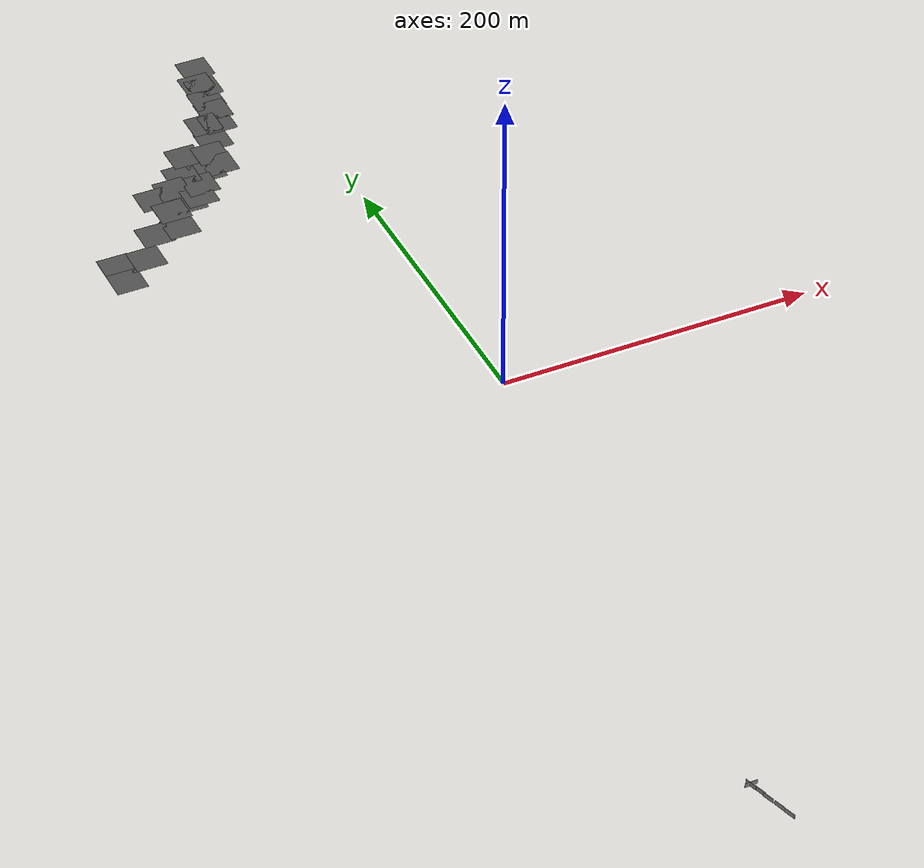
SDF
<sdf version="1.7">
 <world name="default">
  <spherical_coordinates>
   <surface_model>EARTH_WGS84</surface_model>
   <world_frame_orientation>NED</world_frame_orientation>
   <latitude_deg>39.8904</latitude_deg>
   <longitude_deg>32.7815</longitude_deg>
   <elevation>934</elevation>
   <heading_deg>0</heading_deg>
  </spherical_coordinates>
  <light name="sun" type="directional">
   <pose>0 0 10 0 -0 0</pose>
   <diffuse>0.8 0.8 0.8 1</diffuse>
   <specular>0.2 0.2 0.2 1</specular>
   <attenuation>
    <range>1000</range>
    <constant>0.9</constant>
    <linear>0.01</linear>
    <quadratic>0.001</quadratic>
   </attenuation>
   <direction>-0.5 0.1 -0.9</direction>
   <spot><inner_angle>0</inner_angle><outer_angle>0</outer_angle><falloff>0</falloff></spot>
  </light>
  <magnetic_field>6e-06 2.3e-05 -4.2e-05</magnetic_field>
  <atmosphere type="adiabatic"/>
  <physics name="default_physics" default="0" type="ode">
   <max_step_size>0.001</max_step_size>
   <real_time_factor>1</real_time_factor>
   <real_time_update_rate>1000</real_time_update_rate>
  </physics>
  <scene><ambient>0.4 0.4 0.4 1</ambient><background>0.7 0.7 0.7 1</background><shadows>1</shadows></scene>
  <audio><device>default</device></audio>
  <model name="grey_wall">
   <static>1</static>
   <link name="link">
    <pose>0 0 1.4 0 -0 0</pose>
    <collision name="collision"><geometry><box><size>7.5 0.2 2.8</size></box></geometry></collision>
    <visual name="visual">
     <cast_shadows>0</cast_shadows>
     <geometry><box><size>7.5 0.2 2.8</size></box></geometry>
     <material>
      <script>
       <uri>model://grey_wall/materials/scripts</uri>
       <uri>model://grey_wall/materials/textures</uri>
       <name>vrc/grey_wall</name>
      </script>
     </material>
    </visual>
   </link>
   <pose>-26.7501 -356.978 0 0 -0 0</pose>
  </model>
  <model name="grey_wall_clone">
   <static>1</static>
   <link name="link">
    <pose>0 0 1.4 0 -0 0</pose>
    <collision name="collision"><geometry><box><size>7.5 0.2 2.8</size></box></geometry></collision>
    <visual name="visual">
     <cast_shadows>0</cast_shadows>
     <geometry><box><size>7.5 0.2 2.8</size></box></geometry>
     <material>
      <script>
       <uri>model://grey_wall/materials/scripts</uri>
       <uri>model://grey_wall/materials/textures</uri>
       <name>vrc/grey_wall</name>
      </script>
     </material>
    </visual>
   </link>
   <pose>-27.2286 -357.564 0 0 -0 1.87601</pose>
  </model>
  <model name="grey_wall_clone_0">
   <static>1</static>
   <link name="link">
    <pose>0 0 1.4 0 -0 0</pose>
    <collision name="collision"><geometry><box><size>7.5 0.2 2.8</size></box></geometry></collision>
    <visual name="visual">
     <cast_shadows>0</cast_shadows>
     <geometry><box><size>7.5 0.2 2.8</size></box></geometry>
     <material>
      <script>
       <uri>model://grey_wall/materials/scripts</uri>
       <uri>model://grey_wall/materials/textures</uri>
       <name>vrc/grey_wall</name>
      </script>
     </material>
    </visual>
   </link>
   <pose>-25 -364 0 0 -0 1.87601</pose>
  </model>
  <model name="grey_wall_clone_0_clone">
   <static>1</static>
   <link name="link">
    <pose>0 0 1.4 0 -0 0</pose>
    <collision name="collision"><geometry><box><size>7.5 0.2 2.8</size></box></geometry></collision>
    <visual name="visual">
     <cast_shadows>0</cast_shadows>
     <geometry><box><size>7.5 0.2 2.8</size></box></geometry>
     <material>
      <script>
       <uri>model://grey_wall/materials/scripts</uri>
       <uri>model://grey_wall/materials/textures</uri>
       <name>vrc/grey_wall</name>
      </script>
     </material>
    </visual>
   </link>
   <pose>-23.5425 -370 0 0 -0 1.87601</pose>
  </model>
  <model name="grey_wall_clone_0_clone_clone">
   <static>1</static>
   <link name="link">
    <pose>0 0 1.4 0 -0 0</pose>
    <collision name="collision"><geometry><box><size>7.5 0.2 2.8</size></box></geometry></collision>
    <visual name="visual">
     <cast_shadows>0</cast_shadows>
     <geometry><box><size>7.5 0.2 2.8</size></box></geometry>
     <material>
      <script>
       <uri>model://grey_wall/materials/scripts</uri>
       <uri>model://grey_wall/materials/textures</uri>
       <name>vrc/grey_wall</name>
      </script>
     </material>
    </visual>
   </link>
   <pose>-21 -378 0 0 -0 1.87601</pose>
  </model>
  <model name="grey_wall_clone_0_clone_clone_clone">
   <static>1</static>
   <link name="link">
    <pose>0 0 1.4 0 -0 0</pose>
    <collision name="collision"><geometry><box><size>7.5 0.2 2.8</size></box></geometry></collision>
    <visual name="visual">
     <cast_shadows>0</cast_shadows>
     <geometry><box><size>7.5 0.2 2.8</size></box></geometry>
     <material>
      <script>
       <uri>model://grey_wall/materials/scripts</uri>
       <uri>model://grey_wall/materials/textures</uri>
       <name>vrc/grey_wall</name>
      </script>
     </material>
    </visual>
   </link>
   <pose>-19 -385 0 0 -0 1.87601</pose>
  </model>
  <gravity>0 0 -9.8</gravity>
  <model name="asphalt_plane">
   <static>1</static>
   <link name="link">
    <collision name="collision"><geometry><box><size>20 20 0.1</size></box></geometry></collision>
    <visual name="visual">
     <cast_shadows>0</cast_shadows>
     <geometry><box><size>20 20 0.1</size></box></geometry>
     <material>
      <script>
       <uri>model://asphalt_plane/materials/scripts</uri>
       <uri>model://asphalt_plane/materials/textures</uri>
       <name>vrc/asphalt</name>
      </script>
     </material>
    </visual>
   </link>
   <pose>-163.314 200.51 0 0 -0 0</pose>
  </model>
  <model name="asphalt_plane_clone">
   <static>1</static>
   <link name="link">
    <collision name="collision"><geometry><box><size>20 20 0.1</size></box></geometry></collision>
    <visual name="visual">
     <cast_shadows>0</cast_shadows>
     <geometry><box><size>20 20 0.1</size></box></geometry>
     <material>
      <script>
       <uri>model://asphalt_plane/materials/scripts</uri>
       <uri>model://asphalt_plane/materials/textures</uri>
       <name>vrc/asphalt</name>
      </script>
     </material>
    </visual>
   </link>
   <pose>-144.347 200.152 0 0 -0 0</pose>
  </model>
  <model name="asphalt_plane_clone_0">
   <static>1</static>
   <link name="link">
    <collision name="collision"><geometry><box><size>20 20 0.1</size></box></geometry></collision>
    <visual name="visual">
     <cast_shadows>0</cast_shadows>
     <geometry><box><size>20 20 0.1</size></box></geometry>
     <material>
      <script>
       <uri>model://asphalt_plane/materials/scripts</uri>
       <uri>model://asphalt_plane/materials/textures</uri>
       <name>vrc/asphalt</name>
      </script>
     </material>
    </visual>
   </link>
   <pose>-163.322 184.345 0 0 -0 0</pose>
  </model>
  <model name="asphalt_plane_clone_1">
   <static>1</static>
   <link name="link">
    <collision name="collision"><geometry><box><size>20 20 0.1</size></box></geometry></collision>
    <visual name="visual">
     <cast_shadows>0</cast_shadows>
     <geometry><box><size>20 20 0.1</size></box></geometry>
     <material>
      <script>
       <uri>model://asphalt_plane/materials/scripts</uri>
       <uri>model://asphalt_plane/materials/textures</uri>
       <name>vrc/asphalt</name>
      </script>
     </material>
    </visual>
   </link>
   <pose>-130.973 219.846 0 0 -0 0</pose>
  </model>
  <model name="asphalt_plane_clone_2">
   <static>1</static>
   <link name="link">
    <collision name="collision"><geometry><box><size>20 20 0.1</size></box></geometry></collision>
    <visual name="visual">
     <cast_shadows>0</cast_shadows>
     <geometry><box><size>20 20 0.1</size></box></geometry>
     <material>
      <script>
       <uri>model://asphalt_plane/materials/scripts</uri>
       <uri>model://asphalt_plane/materials/textures</uri>
       <name>vrc/asphalt</name>
      </script>
     </material>
    </visual>
   </link>
   <pose>-113.795 221.196 0 0 -0 0</pose>
  </model>
  <model name="asphalt_plane_clone_3">
   <static>1</static>
   <link name="link">
    <collision name="collision"><geometry><box><size>20 20 0.1</size></box></geometry></collision>
    <visual name="visual">
     <cast_shadows>0</cast_shadows>
     <geometry><box><size>20 20 0.1</size></box></geometry>
     <material>
      <script>
       <uri>model://asphalt_plane/materials/scripts</uri>
       <uri>model://asphalt_plane/materials/textures</uri>
       <name>vrc/asphalt</name>
      </script>
     </material>
    </visual>
   </link>
   <pose>-100.176 242.599 0 0 -0 0</pose>
  </model>
  <model name="asphalt_plane_clone_4">
   <static>1</static>
   <link name="link">
    <collision name="collision"><geometry><box><size>20 20 0.1</size></box></geometry></collision>
    <visual name="visual">
     <cast_shadows>0</cast_shadows>
     <geometry><box><size>20 20 0.1</size></box></geometry>
     <material>
      <script>
       <uri>model://asphalt_plane/materials/scripts</uri>
       <uri>model://asphalt_plane/materials/textures</uri>
       <name>vrc/asphalt</name>
      </script>
     </material>
    </visual>
   </link>
   <pose>-112.605 238.153 0 0 -0 0</pose>
  </model>
  <model name="asphalt_plane_clone_5">
   <static>1</static>
   <link name="link">
    <collision name="collision"><geometry><box><size>20 20 0.1</size></box></geometry></collision>
    <visual name="visual">
     <cast_shadows>0</cast_shadows>
     <geometry><box><size>20 20 0.1</size></box></geometry>
     <material>
      <script>
       <uri>model://asphalt_plane/materials/scripts</uri>
       <uri>model://asphalt_plane/materials/textures</uri>
       <name>vrc/asphalt</name>
      </script>
     </material>
    </visual>
   </link>
   <pose>-86.3218 256.104 0 0 -0 0</pose>
  </model>
  <model name="asphalt_plane_clone_6">
   <static>1</static>
   <link name="link">
    <collision name="collision"><geometry><box><size>20 20 0.1</size></box></geometry></collision>
    <visual name="visual">
     <cast_shadows>0</cast_shadows>
     <geometry><box><size>20 20 0.1</size></box></geometry>
     <material>
      <script>
       <uri>model://asphalt_plane/materials/scripts</uri>
       <uri>model://asphalt_plane/materials/textures</uri>
       <name>vrc/asphalt</name>
      </script>
     </material>
    </visual>
   </link>
   <pose>-77.1552 267.509 0 0 -0 0</pose>
  </model>
  <model name="asphalt_plane_clone_7">
   <static>1</static>
   <link name="link">
    <collision name="collision"><geometry><box><size>20 20 0.1</size></box></geometry></collision>
    <visual name="visual">
     <cast_shadows>0</cast_shadows>
     <geometry><box><size>20 20 0.1</size></box></geometry>
     <material>
      <script>
       <uri>model://asphalt_plane/materials/scripts</uri>
       <uri>model://asphalt_plane/materials/textures</uri>
       <name>vrc/asphalt</name>
      </script>
     </material>
    </visual>
   </link>
   <pose>-91.3117 245.691 0 0 -0 0</pose>
  </model>
  <model name="asphalt_plane_clone_8">
   <static>1</static>
   <link name="link">
    <collision name="collision"><geometry><box><size>20 20 0.1</size></box></geometry></collision>
    <visual name="visual">
     <cast_shadows>0</cast_shadows>
     <geometry><box><size>20 20 0.1</size></box></geometry>
     <material>
      <script>
       <uri>model://asphalt_plane/materials/scripts</uri>
       <uri>model://asphalt_plane/materials/textures</uri>
       <name>vrc/asphalt</name>
      </script>
     </material>
    </visual>
   </link>
   <pose>-93.1192 269.926 0 0 -0 0</pose>
  </model>
  <model name="asphalt_plane_clone_9">
   <static>1</static>
   <link name="link">
    <collision name="collision"><geometry><box><size>20 20 0.1</size></box></geometry></collision>
    <visual name="visual">
     <cast_shadows>0</cast_shadows>
     <geometry><box><size>20 20 0.1</size></box></geometry>
     <material>
      <script>
       <uri>model://asphalt_plane/materials/scripts</uri>
       <uri>model://asphalt_plane/materials/textures</uri>
       <name>vrc/asphalt</name>
      </script>
     </material>
    </visual>
   </link>
   <pose>-103.848 258.507 0 0 -0 0</pose>
  </model>
  <model name="asphalt_plane_clone_10">
   <static>1</static>
   <link name="link">
    <collision name="collision"><geometry><box><size>20 20 0.1</size></box></geometry></collision>
    <visual name="visual">
     <cast_shadows>0</cast_shadows>
     <geometry><box><size>20 20 0.1</size></box></geometry>
     <material>
      <script>
       <uri>model://asphalt_plane/materials/scripts</uri>
       <uri>model://asphalt_plane/materials/textures</uri>
       <name>vrc/asphalt</name>
      </script>
     </material>
    </visual>
   </link>
   <pose>-118.308 253.718 0 0 -0 0</pose>
  </model>
  <model name="asphalt_plane_clone_11">
   <static>1</static>
   <link name="link">
    <collision name="collision"><geometry><box><size>20 20 0.1</size></box></geometry></collision>
    <visual name="visual">
     <cast_shadows>0</cast_shadows>
     <geometry><box><size>20 20 0.1</size></box></geometry>
     <material>
      <script>
       <uri>model://asphalt_plane/materials/scripts</uri>
       <uri>model://asphalt_plane/materials/textures</uri>
       <name>vrc/asphalt</name>
      </script>
     </material>
    </visual>
   </link>
   <pose>-67.9805 283.471 0 0 -0 0</pose>
  </model>
  <model name="asphalt_plane_clone_12">
   <static>1</static>
   <link name="link">
    <collision name="collision"><geometry><box><size>20 20 0.1</size></box></geometry></collision>
    <visual name="visual">
     <cast_shadows>0</cast_shadows>
     <geometry><box><size>20 20 0.1</size></box></geometry>
     <material>
      <script>
       <uri>model://asphalt_plane/materials/scripts</uri>
       <uri>model://asphalt_plane/materials/textures</uri>
       <name>vrc/asphalt</name>
      </script>
     </material>
    </visual>
   </link>
   <pose>-60 313.462 0 0 -0 0</pose>
  </model>
  <model name="asphalt_plane_clone_13">
   <static>1</static>
   <link name="link">
    <collision name="collision"><geometry><box><size>20 20 0.1</size></box></geometry></collision>
    <visual name="visual">
     <cast_shadows>0</cast_shadows>
     <geometry><box><size>20 20 0.1</size></box></geometry>
     <material>
      <script>
       <uri>model://asphalt_plane/materials/scripts</uri>
       <uri>model://asphalt_plane/materials/textures</uri>
       <name>vrc/asphalt</name>
      </script>
     </material>
    </visual>
   </link>
   <pose>-60.6712 296.212 0 0 -0 0</pose>
  </model>
  <model name="asphalt_plane_clone_14">
   <static>1</static>
   <link name="link">
    <collision name="collision"><geometry><box><size>20 20 0.1</size></box></geometry></collision>
    <visual name="visual">
     <cast_shadows>0</cast_shadows>
     <geometry><box><size>20 20 0.1</size></box></geometry>
     <material>
      <script>
       <uri>model://asphalt_plane/materials/scripts</uri>
       <uri>model://asphalt_plane/materials/textures</uri>
       <name>vrc/asphalt</name>
      </script>
     </material>
    </visual>
   </link>
   <pose>-67.4477 270.875 0 0 -0 0</pose>
  </model>
  <model name="asphalt_plane_clone_15">
   <static>1</static>
   <link name="link">
    <collision name="collision"><geometry><box><size>20 20 0.1</size></box></geometry></collision>
    <visual name="visual">
     <cast_shadows>0</cast_shadows>
     <geometry><box><size>20 20 0.1</size></box></geometry>
     <material>
      <script>
       <uri>model://asphalt_plane/materials/scripts</uri>
       <uri>model://asphalt_plane/materials/textures</uri>
       <name>vrc/asphalt</name>
      </script>
     </material>
    </visual>
   </link>
   <pose>-48.51 325.662 0 0 -0 0</pose>
  </model>
  <model name="asphalt_plane_clone_16">
   <static>1</static>
   <link name="link">
    <collision name="collision"><geometry><box><size>20 20 0.1</size></box></geometry></collision>
    <visual name="visual">
     <cast_shadows>0</cast_shadows>
     <geometry><box><size>20 20 0.1</size></box></geometry>
     <material>
      <script>
       <uri>model://asphalt_plane/materials/scripts</uri>
       <uri>model://asphalt_plane/materials/textures</uri>
       <name>vrc/asphalt</name>
      </script>
     </material>
    </visual>
   </link>
   <pose>-44.4879 351.513 0 0 -0 0</pose>
  </model>
  <model name="asphalt_plane_clone_17">
   <static>1</static>
   <link name="link">
    <collision name="collision"><geometry><box><size>20 20 0.1</size></box></geometry></collision>
    <visual name="visual">
     <cast_shadows>0</cast_shadows>
     <geometry><box><size>20 20 0.1</size></box></geometry>
     <material>
      <script>
       <uri>model://asphalt_plane/materials/scripts</uri>
       <uri>model://asphalt_plane/materials/textures</uri>
       <name>vrc/asphalt</name>
      </script>
     </material>
    </visual>
   </link>
   <pose>-41.8405 372.334 0 0 -0 0</pose>
  </model>
  <model name="asphalt_plane_clone_18">
   <static>1</static>
   <link name="link">
    <collision name="collision"><geometry><box><size>20 20 0.1</size></box></geometry></collision>
    <visual name="visual">
     <cast_shadows>0</cast_shadows>
     <geometry><box><size>20 20 0.1</size></box></geometry>
     <material>
      <script>
       <uri>model://asphalt_plane/materials/scripts</uri>
       <uri>model://asphalt_plane/materials/textures</uri>
       <name>vrc/asphalt</name>
      </script>
     </material>
    </visual>
   </link>
   <pose>-48 338 0 0 -0 0</pose>
  </model>
  <model name="asphalt_plane_clone_19">
   <static>1</static>
   <link name="link">
    <collision name="collision"><geometry><box><size>20 20 0.1</size></box></geometry></collision>
    <visual name="visual">
     <cast_shadows>0</cast_shadows>
     <geometry><box><size>20 20 0.1</size></box></geometry>
     <material>
      <script>
       <uri>model://asphalt_plane/materials/scripts</uri>
       <uri>model://asphalt_plane/materials/textures</uri>
       <name>vrc/asphalt</name>
      </script>
     </material>
    </visual>
   </link>
   <pose>-47 356 0 0 -0 0</pose>
  </model>
  <model name="asphalt_plane_clone_20">
   <static>1</static>
   <link name="link">
    <collision name="collision"><geometry><box><size>20 20 0.1</size></box></geometry></collision>
    <visual name="visual">
     <cast_shadows>0</cast_shadows>
     <geometry><box><size>20 20 0.1</size></box></geometry>
     <material>
      <script>
       <uri>model://asphalt_plane/materials/scripts</uri>
       <uri>model://asphalt_plane/materials/textures</uri>
       <name>vrc/asphalt</name>
      </script>
     </material>
    </visual>
   </link>
   <pose>-84.2677 287.127 0 0 -0 0</pose>
  </model>
  <model name="asphalt_plane_clone_21">
   <static>1</static>
   <link name="link">
    <collision name="collision"><geometry><box><size>20 20 0.1</size></box></geometry></collision>
    <visual name="visual">
     <cast_shadows>0</cast_shadows>
     <geometry><box><size>20 20 0.1</size></box></geometry>
     <material>
      <script>
       <uri>model://asphalt_plane/materials/scripts</uri>
       <uri>model://asphalt_plane/materials/textures</uri>
       <name>vrc/asphalt</name>
      </script>
     </material>
    </visual>
   </link>
   <pose>-51.4564 312.144 0 0 -0 0</pose>
  </model>
 </world>
</sdf>
